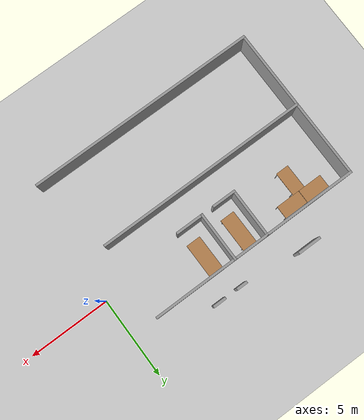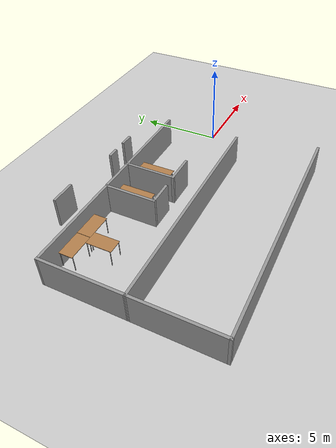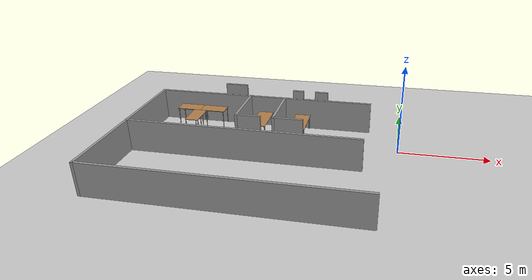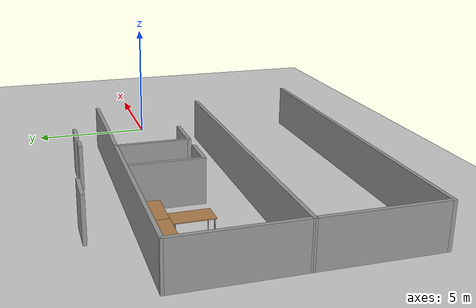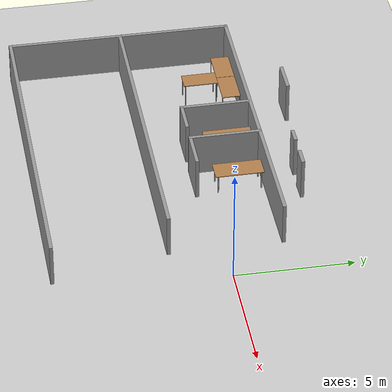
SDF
<sdf version="1.7">
 <world name="default">
  <model name="table">
   <static>1</static>
   <link name="link">
    <collision name="surface">
     <pose>0 0 1 0 -0 0</pose>
     <geometry><box><size>1.5 0.8 0.03</size></box></geometry>
     <surface><friction><ode><mu>0.6</mu><mu2>0.6</mu2></ode></friction></surface>
    </collision>
    <visual name="visual1">
     <pose>0 0 1 0 -0 0</pose>
     <geometry><box><size>1.5 0.8 0.03</size></box></geometry>
     <material>
      <script><uri>file://media/materials/scripts/gazebo.material</uri><name>Gazebo/Wood</name></script>
     </material>
    </visual>
    <collision name="front_left_leg">
     <pose>0.68 0.38 0.5 0 -0 0</pose>
     <geometry><cylinder><radius>0.02</radius><length>1</length></cylinder></geometry>
    </collision>
    <visual name="front_left_leg">
     <pose>0.68 0.38 0.5 0 -0 0</pose>
     <geometry><cylinder><radius>0.02</radius><length>1</length></cylinder></geometry>
     <material>
      <script><uri>file://media/materials/scripts/gazebo.material</uri><name>Gazebo/Grey</name></script>
     </material>
    </visual>
    <collision name="front_right_leg">
     <pose>0.68 -0.38 0.5 0 -0 0</pose>
     <geometry><cylinder><radius>0.02</radius><length>1</length></cylinder></geometry>
    </collision>
    <visual name="front_right_leg">
     <pose>0.68 -0.38 0.5 0 -0 0</pose>
     <geometry><cylinder><radius>0.02</radius><length>1</length></cylinder></geometry>
     <material>
      <script><uri>file://media/materials/scripts/gazebo.material</uri><name>Gazebo/Grey</name></script>
     </material>
    </visual>
    <collision name="back_right_leg">
     <pose>-0.68 -0.38 0.5 0 -0 0</pose>
     <geometry><cylinder><radius>0.02</radius><length>1</length></cylinder></geometry>
    </collision>
    <visual name="back_right_leg">
     <pose>-0.68 -0.38 0.5 0 -0 0</pose>
     <geometry><cylinder><radius>0.02</radius><length>1</length></cylinder></geometry>
     <material>
      <script><uri>file://media/materials/scripts/gazebo.material</uri><name>Gazebo/Grey</name></script>
     </material>
    </visual>
    <collision name="back_left_leg">
     <pose>-0.68 0.38 0.5 0 -0 0</pose>
     <geometry><cylinder><radius>0.02</radius><length>1</length></cylinder></geometry>
    </collision>
    <visual name="back_left_leg">
     <pose>-0.68 0.38 0.5 0 -0 0</pose>
     <geometry><cylinder><radius>0.02</radius><length>1</length></cylinder></geometry>
     <material>
      <script><uri>file://media/materials/scripts/gazebo.material</uri><name>Gazebo/Grey</name></script>
     </material>
    </visual>
   </link>
   <pose>-12.9377 1.89351 0 0 -0 0</pose>
  </model>
  <model name="table_0">
   <static>1</static>
   <link name="link">
    <collision name="surface">
     <pose>0 0 1 0 -0 0</pose>
     <geometry><box><size>1.5 0.8 0.03</size></box></geometry>
     <surface><friction><ode><mu>0.6</mu><mu2>0.6</mu2></ode></friction></surface>
    </collision>
    <visual name="visual1">
     <pose>0 0 1 0 -0 0</pose>
     <geometry><box><size>1.5 0.8 0.03</size></box></geometry>
     <material>
      <script><uri>file://media/materials/scripts/gazebo.material</uri><name>Gazebo/Wood</name></script>
     </material>
    </visual>
    <collision name="front_left_leg">
     <pose>0.68 0.38 0.5 0 -0 0</pose>
     <geometry><cylinder><radius>0.02</radius><length>1</length></cylinder></geometry>
    </collision>
    <visual name="front_left_leg">
     <pose>0.68 0.38 0.5 0 -0 0</pose>
     <geometry><cylinder><radius>0.02</radius><length>1</length></cylinder></geometry>
     <material>
      <script><uri>file://media/materials/scripts/gazebo.material</uri><name>Gazebo/Grey</name></script>
     </material>
    </visual>
    <collision name="front_right_leg">
     <pose>0.68 -0.38 0.5 0 -0 0</pose>
     <geometry><cylinder><radius>0.02</radius><length>1</length></cylinder></geometry>
    </collision>
    <visual name="front_right_leg">
     <pose>0.68 -0.38 0.5 0 -0 0</pose>
     <geometry><cylinder><radius>0.02</radius><length>1</length></cylinder></geometry>
     <material>
      <script><uri>file://media/materials/scripts/gazebo.material</uri><name>Gazebo/Grey</name></script>
     </material>
    </visual>
    <collision name="back_right_leg">
     <pose>-0.68 -0.38 0.5 0 -0 0</pose>
     <geometry><cylinder><radius>0.02</radius><length>1</length></cylinder></geometry>
    </collision>
    <visual name="back_right_leg">
     <pose>-0.68 -0.38 0.5 0 -0 0</pose>
     <geometry><cylinder><radius>0.02</radius><length>1</length></cylinder></geometry>
     <material>
      <script><uri>file://media/materials/scripts/gazebo.material</uri><name>Gazebo/Grey</name></script>
     </material>
    </visual>
    <collision name="back_left_leg">
     <pose>-0.68 0.38 0.5 0 -0 0</pose>
     <geometry><cylinder><radius>0.02</radius><length>1</length></cylinder></geometry>
    </collision>
    <visual name="back_left_leg">
     <pose>-0.68 0.38 0.5 0 -0 0</pose>
     <geometry><cylinder><radius>0.02</radius><length>1</length></cylinder></geometry>
     <material>
      <script><uri>file://media/materials/scripts/gazebo.material</uri><name>Gazebo/Grey</name></script>
     </material>
    </visual>
   </link>
   <pose>-11.4297 1.89153 0 0 -0 0</pose>
  </model>
  <model name="table_1">
   <static>1</static>
   <link name="link">
    <collision name="surface">
     <pose>0 0 1 0 -0 0</pose>
     <geometry><box><size>1.5 0.8 0.03</size></box></geometry>
     <surface><friction><ode><mu>0.6</mu><mu2>0.6</mu2></ode></friction></surface>
    </collision>
    <visual name="visual1">
     <pose>0 0 1 0 -0 0</pose>
     <geometry><box><size>1.5 0.8 0.03</size></box></geometry>
     <material>
      <script><uri>file://media/materials/scripts/gazebo.material</uri><name>Gazebo/Wood</name></script>
     </material>
    </visual>
    <collision name="front_left_leg">
     <pose>0.68 0.38 0.5 0 -0 0</pose>
     <geometry><cylinder><radius>0.02</radius><length>1</length></cylinder></geometry>
    </collision>
    <visual name="front_left_leg">
     <pose>0.68 0.38 0.5 0 -0 0</pose>
     <geometry><cylinder><radius>0.02</radius><length>1</length></cylinder></geometry>
     <material>
      <script><uri>file://media/materials/scripts/gazebo.material</uri><name>Gazebo/Grey</name></script>
     </material>
    </visual>
    <collision name="front_right_leg">
     <pose>0.68 -0.38 0.5 0 -0 0</pose>
     <geometry><cylinder><radius>0.02</radius><length>1</length></cylinder></geometry>
    </collision>
    <visual name="front_right_leg">
     <pose>0.68 -0.38 0.5 0 -0 0</pose>
     <geometry><cylinder><radius>0.02</radius><length>1</length></cylinder></geometry>
     <material>
      <script><uri>file://media/materials/scripts/gazebo.material</uri><name>Gazebo/Grey</name></script>
     </material>
    </visual>
    <collision name="back_right_leg">
     <pose>-0.68 -0.38 0.5 0 -0 0</pose>
     <geometry><cylinder><radius>0.02</radius><length>1</length></cylinder></geometry>
    </collision>
    <visual name="back_right_leg">
     <pose>-0.68 -0.38 0.5 0 -0 0</pose>
     <geometry><cylinder><radius>0.02</radius><length>1</length></cylinder></geometry>
     <material>
      <script><uri>file://media/materials/scripts/gazebo.material</uri><name>Gazebo/Grey</name></script>
     </material>
    </visual>
    <collision name="back_left_leg">
     <pose>-0.68 0.38 0.5 0 -0 0</pose>
     <geometry><cylinder><radius>0.02</radius><length>1</length></cylinder></geometry>
    </collision>
    <visual name="back_left_leg">
     <pose>-0.68 0.38 0.5 0 -0 0</pose>
     <geometry><cylinder><radius>0.02</radius><length>1</length></cylinder></geometry>
     <material>
      <script><uri>file://media/materials/scripts/gazebo.material</uri><name>Gazebo/Grey</name></script>
     </material>
    </visual>
   </link>
   <pose>-12.1826 0.74531 0 0 0 -1.56271</pose>
  </model>
  <model name="meeting_room_table_0_clone">
   <link name="link">
    <inertial>
     <inertia><ixx>0</ixx><ixy>0</ixy><ixz>0</ixz><iyy>0</iyy><iyz>0</iyz><izz>0</izz></inertia>
     <mass>0</mass>
    </inertial>
    <visual name="visual1">
     <pose>0 0 0.84 0 -0 0</pose>
     <geometry><box><size>2.07185 0.892487 0.025485</size></box></geometry>
     <material>
      <script><uri>file://media/materials/scripts/gazebo.material</uri><name>Gazebo/Wood</name></script>
      <shader type="pixel"><normal_map>__default__</normal_map></shader>
      <ambient>1 1 1 1</ambient>
      <diffuse>1 1 1 1</diffuse>
      <specular>0.2 0.2 0.2 1</specular>
      <emissive>0 0 0 1</emissive>
     </material>
    </visual>
    <visual name="front_right_leg">
     <pose>0.92 -0.38 0.42 0 -0 0</pose>
     <geometry><cylinder><radius>0.0301928</radius><length>0.822541</length></cylinder></geometry>
     <material>
      <script><uri>file://media/materials/scripts/gazebo.material</uri><name>Gazebo/Grey</name></script>
      <shader type="pixel"><normal_map>__default__</normal_map></shader>
      <ambient>0.3 0.3 0.3 1</ambient>
      <diffuse>0.7 0.7 0.7 1</diffuse>
      <specular>0.01 0.01 0.01 1</specular>
      <emissive>0 0 0 1</emissive>
     </material>
    </visual>
    <visual name="front_left_leg">
     <pose>0.92 0.38 0.42 0 -0 0</pose>
     <geometry><cylinder><radius>0.0301928</radius><length>0.822541</length></cylinder></geometry>
     <material>
      <script><uri>file://media/materials/scripts/gazebo.material</uri><name>Gazebo/Grey</name></script>
      <shader type="pixel"><normal_map>__default__</normal_map></shader>
      <ambient>0.3 0.3 0.3 1</ambient>
      <diffuse>0.7 0.7 0.7 1</diffuse>
      <specular>0.01 0.01 0.01 1</specular>
      <emissive>0 0 0 1</emissive>
     </material>
    </visual>
    <visual name="back_left_leg">
     <pose>-0.92 0.38 0.42 0 -0 0</pose>
     <geometry><cylinder><radius>0.0301928</radius><length>0.822541</length></cylinder></geometry>
     <material>
      <script><uri>file://media/materials/scripts/gazebo.material</uri><name>Gazebo/Grey</name></script>
      <shader type="pixel"><normal_map>__default__</normal_map></shader>
      <ambient>0.3 0.3 0.3 1</ambient>
      <diffuse>0.7 0.7 0.7 1</diffuse>
      <specular>0.01 0.01 0.01 1</specular>
      <emissive>0 0 0 1</emissive>
     </material>
    </visual>
    <visual name="back_right_leg">
     <pose>-0.92 -0.38 0.42 0 -0 0</pose>
     <geometry><cylinder><radius>0.0301928</radius><length>0.822541</length></cylinder></geometry>
     <material>
      <script><uri>file://media/materials/scripts/gazebo.material</uri><name>Gazebo/Grey</name></script>
      <shader type="pixel"><normal_map>__default__</normal_map></shader>
      <ambient>0.3 0.3 0.3 1</ambient>
      <diffuse>0.7 0.7 0.7 1</diffuse>
      <specular>0.01 0.01 0.01 1</specular>
      <emissive>0 0 0 1</emissive>
     </material>
    </visual>
    <collision name="surface">
     <pose>0 0 0.84 0 -0 0</pose>
     <geometry><box><size>2.07185 0.892487 0.025485</size></box></geometry>
     <surface>
      <friction>
       <ode><mu>0.6</mu><mu2>0.6</mu2><fdir1>0 0 0</fdir1><slip1>0</slip1><slip2>0</slip2></ode>
       <torsional>
        <coefficient>1</coefficient>
        <patch_radius>0</patch_radius>
        <surface_radius>0</surface_radius>
        <use_patch_radius>1</use_patch_radius>
        <ode><slip>0</slip></ode>
       </torsional>
      </friction>
      <bounce><restitution_coefficient>0</restitution_coefficient><threshold>1e+06</threshold></bounce>
      <contact>
       <collide_without_contact>0</collide_without_contact>
       <collide_without_contact_bitmask>1</collide_without_contact_bitmask>
       <collide_bitmask>1</collide_bitmask>
       <ode>
        <soft_cfm>0</soft_cfm>
        <soft_erp>0.2</soft_erp>
        <kp>1e+13</kp>
        <kd>1</kd>
        <max_vel>0.01</max_vel>
        <min_depth>0</min_depth>
       </ode>
       <bullet>
        <split_impulse>1</split_impulse>
        <split_impulse_penetration_threshold>-0.01</split_impulse_penetration_threshold>
        <soft_cfm>0</soft_cfm>
        <soft_erp>0.2</soft_erp>
        <kp>1e+13</kp>
        <kd>1</kd>
       </bullet>
      </contact>
     </surface>
    </collision>
    <collision name="front_left_leg">
     <pose>0.92 0.38 0.42 0 -0 0</pose>
     <geometry><cylinder><radius>0.030193</radius><length>0.822541</length></cylinder></geometry>
     <surface>
      <friction>
       <ode><mu>1</mu><mu2>1</mu2><fdir1>0 0 0</fdir1><slip1>0</slip1><slip2>0</slip2></ode>
       <torsional>
        <coefficient>1</coefficient>
        <patch_radius>0</patch_radius>
        <surface_radius>0</surface_radius>
        <use_patch_radius>1</use_patch_radius>
        <ode><slip>0</slip></ode>
       </torsional>
      </friction>
      <bounce><restitution_coefficient>0</restitution_coefficient><threshold>1e+06</threshold></bounce>
      <contact>
       <collide_without_contact>0</collide_without_contact>
       <collide_without_contact_bitmask>1</collide_without_contact_bitmask>
       <collide_bitmask>1</collide_bitmask>
       <ode>
        <soft_cfm>0</soft_cfm>
        <soft_erp>0.2</soft_erp>
        <kp>1e+13</kp>
        <kd>1</kd>
        <max_vel>0.01</max_vel>
        <min_depth>0</min_depth>
       </ode>
       <bullet>
        <split_impulse>1</split_impulse>
        <split_impulse_penetration_threshold>-0.01</split_impulse_penetration_threshold>
        <soft_cfm>0</soft_cfm>
        <soft_erp>0.2</soft_erp>
        <kp>1e+13</kp>
        <kd>1</kd>
       </bullet>
      </contact>
     </surface>
    </collision>
    <collision name="front_right_leg">
     <pose>0.92 -0.38 0.42 0 -0 0</pose>
     <geometry><cylinder><radius>0.030193</radius><length>0.822541</length></cylinder></geometry>
     <surface>
      <friction>
       <ode><mu>1</mu><mu2>1</mu2><fdir1>0 0 0</fdir1><slip1>0</slip1><slip2>0</slip2></ode>
       <torsional>
        <coefficient>1</coefficient>
        <patch_radius>0</patch_radius>
        <surface_radius>0</surface_radius>
        <use_patch_radius>1</use_patch_radius>
        <ode><slip>0</slip></ode>
       </torsional>
      </friction>
      <bounce><restitution_coefficient>0</restitution_coefficient><threshold>1e+06</threshold></bounce>
      <contact>
       <collide_without_contact>0</collide_without_contact>
       <collide_without_contact_bitmask>1</collide_without_contact_bitmask>
       <collide_bitmask>1</collide_bitmask>
       <ode>
        <soft_cfm>0</soft_cfm>
        <soft_erp>0.2</soft_erp>
        <kp>1e+13</kp>
        <kd>1</kd>
        <max_vel>0.01</max_vel>
        <min_depth>0</min_depth>
       </ode>
       <bullet>
        <split_impulse>1</split_impulse>
        <split_impulse_penetration_threshold>-0.01</split_impulse_penetration_threshold>
        <soft_cfm>0</soft_cfm>
        <soft_erp>0.2</soft_erp>
        <kp>1e+13</kp>
        <kd>1</kd>
       </bullet>
      </contact>
     </surface>
    </collision>
    <collision name="back_right_leg">
     <pose>-0.92 -0.38 0.42 0 -0 0</pose>
     <geometry><cylinder><radius>0.030193</radius><length>0.822541</length></cylinder></geometry>
     <surface>
      <friction>
       <ode><mu>1</mu><mu2>1</mu2><fdir1>0 0 0</fdir1><slip1>0</slip1><slip2>0</slip2></ode>
       <torsional>
        <coefficient>1</coefficient>
        <patch_radius>0</patch_radius>
        <surface_radius>0</surface_radius>
        <use_patch_radius>1</use_patch_radius>
        <ode><slip>0</slip></ode>
       </torsional>
      </friction>
      <bounce><restitution_coefficient>0</restitution_coefficient><threshold>1e+06</threshold></bounce>
      <contact>
       <collide_without_contact>0</collide_without_contact>
       <collide_without_contact_bitmask>1</collide_without_contact_bitmask>
       <collide_bitmask>1</collide_bitmask>
       <ode>
        <soft_cfm>0</soft_cfm>
        <soft_erp>0.2</soft_erp>
        <kp>1e+13</kp>
        <kd>1</kd>
        <max_vel>0.01</max_vel>
        <min_depth>0</min_depth>
       </ode>
       <bullet>
        <split_impulse>1</split_impulse>
        <split_impulse_penetration_threshold>-0.01</split_impulse_penetration_threshold>
        <soft_cfm>0</soft_cfm>
        <soft_erp>0.2</soft_erp>
        <kp>1e+13</kp>
        <kd>1</kd>
       </bullet>
      </contact>
     </surface>
    </collision>
    <collision name="back_left_leg">
     <pose>-0.92 0.38 0.42 0 -0 0</pose>
     <geometry><cylinder><radius>0.030193</radius><length>0.822541</length></cylinder></geometry>
     <surface>
      <friction>
       <ode><mu>1</mu><mu2>1</mu2><fdir1>0 0 0</fdir1><slip1>0</slip1><slip2>0</slip2></ode>
       <torsional>
        <coefficient>1</coefficient>
        <patch_radius>0</patch_radius>
        <surface_radius>0</surface_radius>
        <use_patch_radius>1</use_patch_radius>
        <ode><slip>0</slip></ode>
       </torsional>
      </friction>
      <bounce><restitution_coefficient>0</restitution_coefficient><threshold>1e+06</threshold></bounce>
      <contact>
       <collide_without_contact>0</collide_without_contact>
       <collide_without_contact_bitmask>1</collide_without_contact_bitmask>
       <collide_bitmask>1</collide_bitmask>
       <ode>
        <soft_cfm>0</soft_cfm>
        <soft_erp>0.2</soft_erp>
        <kp>1e+13</kp>
        <kd>1</kd>
        <max_vel>0.01</max_vel>
        <min_depth>0</min_depth>
       </ode>
       <bullet>
        <split_impulse>1</split_impulse>
        <split_impulse_penetration_threshold>-0.01</split_impulse_penetration_threshold>
        <soft_cfm>0</soft_cfm>
        <soft_erp>0.2</soft_erp>
        <kp>1e+13</kp>
        <kd>1</kd>
       </bullet>
      </contact>
     </surface>
    </collision>
   </link>
   <static>1</static>
   <pose>-5.83648 1.28084 0 0 0 -1.56528</pose>
  </model>
  <model name="meeting_room_table_0_clone_clone">
   <link name="link">
    <inertial>
     <inertia><ixx>0</ixx><ixy>0</ixy><ixz>0</ixz><iyy>0</iyy><iyz>0</iyz><izz>0</izz></inertia>
     <mass>0</mass>
    </inertial>
    <visual name="visual1">
     <pose>0 0 0.84 0 -0 0</pose>
     <geometry><box><size>2.07185 0.892487 0.025485</size></box></geometry>
     <material>
      <script><uri>file://media/materials/scripts/gazebo.material</uri><name>Gazebo/Wood</name></script>
      <shader type="pixel"><normal_map>__default__</normal_map></shader>
      <ambient>1 1 1 1</ambient>
      <diffuse>1 1 1 1</diffuse>
      <specular>0.2 0.2 0.2 1</specular>
      <emissive>0 0 0 1</emissive>
     </material>
    </visual>
    <visual name="front_right_leg">
     <pose>0.92 -0.38 0.42 0 -0 0</pose>
     <geometry><cylinder><radius>0.0301928</radius><length>0.822541</length></cylinder></geometry>
     <material>
      <script><uri>file://media/materials/scripts/gazebo.material</uri><name>Gazebo/Grey</name></script>
      <shader type="pixel"><normal_map>__default__</normal_map></shader>
      <ambient>0.3 0.3 0.3 1</ambient>
      <diffuse>0.7 0.7 0.7 1</diffuse>
      <specular>0.01 0.01 0.01 1</specular>
      <emissive>0 0 0 1</emissive>
     </material>
    </visual>
    <visual name="front_left_leg">
     <pose>0.92 0.38 0.42 0 -0 0</pose>
     <geometry><cylinder><radius>0.0301928</radius><length>0.822541</length></cylinder></geometry>
     <material>
      <script><uri>file://media/materials/scripts/gazebo.material</uri><name>Gazebo/Grey</name></script>
      <shader type="pixel"><normal_map>__default__</normal_map></shader>
      <ambient>0.3 0.3 0.3 1</ambient>
      <diffuse>0.7 0.7 0.7 1</diffuse>
      <specular>0.01 0.01 0.01 1</specular>
      <emissive>0 0 0 1</emissive>
     </material>
    </visual>
    <visual name="back_left_leg">
     <pose>-0.92 0.38 0.42 0 -0 0</pose>
     <geometry><cylinder><radius>0.0301928</radius><length>0.822541</length></cylinder></geometry>
     <material>
      <script><uri>file://media/materials/scripts/gazebo.material</uri><name>Gazebo/Grey</name></script>
      <shader type="pixel"><normal_map>__default__</normal_map></shader>
      <ambient>0.3 0.3 0.3 1</ambient>
      <diffuse>0.7 0.7 0.7 1</diffuse>
      <specular>0.01 0.01 0.01 1</specular>
      <emissive>0 0 0 1</emissive>
     </material>
    </visual>
    <visual name="back_right_leg">
     <pose>-0.92 -0.38 0.42 0 -0 0</pose>
     <geometry><cylinder><radius>0.0301928</radius><length>0.822541</length></cylinder></geometry>
     <material>
      <script><uri>file://media/materials/scripts/gazebo.material</uri><name>Gazebo/Grey</name></script>
      <shader type="pixel"><normal_map>__default__</normal_map></shader>
      <ambient>0.3 0.3 0.3 1</ambient>
      <diffuse>0.7 0.7 0.7 1</diffuse>
      <specular>0.01 0.01 0.01 1</specular>
      <emissive>0 0 0 1</emissive>
     </material>
    </visual>
    <collision name="surface">
     <pose>0 0 0.84 0 -0 0</pose>
     <geometry><box><size>2.07185 0.892487 0.025485</size></box></geometry>
     <surface>
      <friction>
       <ode><mu>0.6</mu><mu2>0.6</mu2><fdir1>0 0 0</fdir1><slip1>0</slip1><slip2>0</slip2></ode>
       <torsional>
        <coefficient>1</coefficient>
        <patch_radius>0</patch_radius>
        <surface_radius>0</surface_radius>
        <use_patch_radius>1</use_patch_radius>
        <ode><slip>0</slip></ode>
       </torsional>
      </friction>
      <bounce><restitution_coefficient>0</restitution_coefficient><threshold>1e+06</threshold></bounce>
      <contact>
       <collide_without_contact>0</collide_without_contact>
       <collide_without_contact_bitmask>1</collide_without_contact_bitmask>
       <collide_bitmask>1</collide_bitmask>
       <ode>
        <soft_cfm>0</soft_cfm>
        <soft_erp>0.2</soft_erp>
        <kp>1e+13</kp>
        <kd>1</kd>
        <max_vel>0.01</max_vel>
        <min_depth>0</min_depth>
       </ode>
       <bullet>
        <split_impulse>1</split_impulse>
        <split_impulse_penetration_threshold>-0.01</split_impulse_penetration_threshold>
        <soft_cfm>0</soft_cfm>
        <soft_erp>0.2</soft_erp>
        <kp>1e+13</kp>
        <kd>1</kd>
       </bullet>
      </contact>
     </surface>
    </collision>
    <collision name="front_left_leg">
     <pose>0.92 0.38 0.42 0 -0 0</pose>
     <geometry><cylinder><radius>0.030193</radius><length>0.822541</length></cylinder></geometry>
     <surface>
      <friction>
       <ode><mu>1</mu><mu2>1</mu2><fdir1>0 0 0</fdir1><slip1>0</slip1><slip2>0</slip2></ode>
       <torsional>
        <coefficient>1</coefficient>
        <patch_radius>0</patch_radius>
        <surface_radius>0</surface_radius>
        <use_patch_radius>1</use_patch_radius>
        <ode><slip>0</slip></ode>
       </torsional>
      </friction>
      <bounce><restitution_coefficient>0</restitution_coefficient><threshold>1e+06</threshold></bounce>
      <contact>
       <collide_without_contact>0</collide_without_contact>
       <collide_without_contact_bitmask>1</collide_without_contact_bitmask>
       <collide_bitmask>1</collide_bitmask>
       <ode>
        <soft_cfm>0</soft_cfm>
        <soft_erp>0.2</soft_erp>
        <kp>1e+13</kp>
        <kd>1</kd>
        <max_vel>0.01</max_vel>
        <min_depth>0</min_depth>
       </ode>
       <bullet>
        <split_impulse>1</split_impulse>
        <split_impulse_penetration_threshold>-0.01</split_impulse_penetration_threshold>
        <soft_cfm>0</soft_cfm>
        <soft_erp>0.2</soft_erp>
        <kp>1e+13</kp>
        <kd>1</kd>
       </bullet>
      </contact>
     </surface>
    </collision>
    <collision name="front_right_leg">
     <pose>0.92 -0.38 0.42 0 -0 0</pose>
     <geometry><cylinder><radius>0.030193</radius><length>0.822541</length></cylinder></geometry>
     <surface>
      <friction>
       <ode><mu>1</mu><mu2>1</mu2><fdir1>0 0 0</fdir1><slip1>0</slip1><slip2>0</slip2></ode>
       <torsional>
        <coefficient>1</coefficient>
        <patch_radius>0</patch_radius>
        <surface_radius>0</surface_radius>
        <use_patch_radius>1</use_patch_radius>
        <ode><slip>0</slip></ode>
       </torsional>
      </friction>
      <bounce><restitution_coefficient>0</restitution_coefficient><threshold>1e+06</threshold></bounce>
      <contact>
       <collide_without_contact>0</collide_without_contact>
       <collide_without_contact_bitmask>1</collide_without_contact_bitmask>
       <collide_bitmask>1</collide_bitmask>
       <ode>
        <soft_cfm>0</soft_cfm>
        <soft_erp>0.2</soft_erp>
        <kp>1e+13</kp>
        <kd>1</kd>
        <max_vel>0.01</max_vel>
        <min_depth>0</min_depth>
       </ode>
       <bullet>
        <split_impulse>1</split_impulse>
        <split_impulse_penetration_threshold>-0.01</split_impulse_penetration_threshold>
        <soft_cfm>0</soft_cfm>
        <soft_erp>0.2</soft_erp>
        <kp>1e+13</kp>
        <kd>1</kd>
       </bullet>
      </contact>
     </surface>
    </collision>
    <collision name="back_right_leg">
     <pose>-0.92 -0.38 0.42 0 -0 0</pose>
     <geometry><cylinder><radius>0.030193</radius><length>0.822541</length></cylinder></geometry>
     <surface>
      <friction>
       <ode><mu>1</mu><mu2>1</mu2><fdir1>0 0 0</fdir1><slip1>0</slip1><slip2>0</slip2></ode>
       <torsional>
        <coefficient>1</coefficient>
        <patch_radius>0</patch_radius>
        <surface_radius>0</surface_radius>
        <use_patch_radius>1</use_patch_radius>
        <ode><slip>0</slip></ode>
       </torsional>
      </friction>
      <bounce><restitution_coefficient>0</restitution_coefficient><threshold>1e+06</threshold></bounce>
      <contact>
       <collide_without_contact>0</collide_without_contact>
       <collide_without_contact_bitmask>1</collide_without_contact_bitmask>
       <collide_bitmask>1</collide_bitmask>
       <ode>
        <soft_cfm>0</soft_cfm>
        <soft_erp>0.2</soft_erp>
        <kp>1e+13</kp>
        <kd>1</kd>
        <max_vel>0.01</max_vel>
        <min_depth>0</min_depth>
       </ode>
       <bullet>
        <split_impulse>1</split_impulse>
        <split_impulse_penetration_threshold>-0.01</split_impulse_penetration_threshold>
        <soft_cfm>0</soft_cfm>
        <soft_erp>0.2</soft_erp>
        <kp>1e+13</kp>
        <kd>1</kd>
       </bullet>
      </contact>
     </surface>
    </collision>
    <collision name="back_left_leg">
     <pose>-0.92 0.38 0.42 0 -0 0</pose>
     <geometry><cylinder><radius>0.030193</radius><length>0.822541</length></cylinder></geometry>
     <surface>
      <friction>
       <ode><mu>1</mu><mu2>1</mu2><fdir1>0 0 0</fdir1><slip1>0</slip1><slip2>0</slip2></ode>
       <torsional>
        <coefficient>1</coefficient>
        <patch_radius>0</patch_radius>
        <surface_radius>0</surface_radius>
        <use_patch_radius>1</use_patch_radius>
        <ode><slip>0</slip></ode>
       </torsional>
      </friction>
      <bounce><restitution_coefficient>0</restitution_coefficient><threshold>1e+06</threshold></bounce>
      <contact>
       <collide_without_contact>0</collide_without_contact>
       <collide_without_contact_bitmask>1</collide_without_contact_bitmask>
       <collide_bitmask>1</collide_bitmask>
       <ode>
        <soft_cfm>0</soft_cfm>
        <soft_erp>0.2</soft_erp>
        <kp>1e+13</kp>
        <kd>1</kd>
        <max_vel>0.01</max_vel>
        <min_depth>0</min_depth>
       </ode>
       <bullet>
        <split_impulse>1</split_impulse>
        <split_impulse_penetration_threshold>-0.01</split_impulse_penetration_threshold>
        <soft_cfm>0</soft_cfm>
        <soft_erp>0.2</soft_erp>
        <kp>1e+13</kp>
        <kd>1</kd>
       </bullet>
      </contact>
     </surface>
    </collision>
   </link>
   <static>1</static>
   <pose>-8.17831 1.27697 0 0 0 -1.56528</pose>
  </model>
  <model name="ground_plane">
   <static>1</static>
   <link name="link">
    <collision name="collision">
     <geometry><plane><normal>0 0 1</normal><size>100 100</size></plane></geometry>
     <surface>
      <contact><collide_bitmask>65535</collide_bitmask></contact>
      <friction><ode><mu>100</mu><mu2>50</mu2></ode></friction>
     </surface>
    </collision>
    <visual name="visual">
     <cast_shadows>0</cast_shadows>
     <geometry><plane><normal>0 0 1</normal><size>100 100</size></plane></geometry>
     <material>
      <script><uri>file://media/materials/scripts/gazebo.material</uri><name>Gazebo/Grey</name></script>
     </material>
    </visual>
   </link>
  </model>
  <model name="HQ_0">
   <link name="Wall_113">
    <pose>-10.7101 4.19347 0 0 -0 3.14159</pose>
    <visual name="Wall_113_Visual">
     <pose>0 0 1.25 0 -0 0</pose>
     <geometry><box><size>1.43805 0.15 2</size></box></geometry>
     <material>
      <script><uri>file://media/materials/scripts/gazebo.material</uri><name>Gazebo/Grey</name></script>
      <ambient>1 1 1 1</ambient>
      <shader type="pixel"/>
     </material>
     <meta><layer>0</layer></meta>
    </visual>
    <collision name="Wall_113_Collision">
     <pose>0 0 1.25 0 -0 0</pose>
     <geometry><box><size>1.43805 0.15 2</size></box></geometry>
     <surface>
      <friction>
       <ode><mu>1</mu><mu2>1</mu2><fdir1>0 0 0</fdir1><slip1>0</slip1><slip2>0</slip2></ode>
       <torsional>
        <coefficient>1</coefficient>
        <patch_radius>0</patch_radius>
        <surface_radius>0</surface_radius>
        <use_patch_radius>1</use_patch_radius>
        <ode><slip>0</slip></ode>
       </torsional>
      </friction>
      <bounce><restitution_coefficient>0</restitution_coefficient><threshold>1e+06</threshold></bounce>
      <contact>
       <collide_without_contact>0</collide_without_contact>
       <collide_without_contact_bitmask>1</collide_without_contact_bitmask>
       <collide_bitmask>1</collide_bitmask>
       <ode>
        <soft_cfm>0</soft_cfm>
        <soft_erp>0.2</soft_erp>
        <kp>1e+13</kp>
        <kd>1</kd>
        <max_vel>0.01</max_vel>
        <min_depth>0</min_depth>
       </ode>
       <bullet>
        <split_impulse>1</split_impulse>
        <split_impulse_penetration_threshold>-0.01</split_impulse_penetration_threshold>
        <soft_cfm>0</soft_cfm>
        <soft_erp>0.2</soft_erp>
        <kp>1e+13</kp>
        <kd>1</kd>
       </bullet>
      </contact>
     </surface>
    </collision>
   </link>
   <link name="Wall_31">
    <pose>-7.9114 -7.22017 0 0 -0 3.14159</pose>
    <visual name="Wall_31_Visual">
     <pose>0 0 1.25 0 -0 0</pose>
     <geometry><box><size>14.25 0.15 2</size></box></geometry>
     <material>
      <script><uri>file://media/materials/scripts/gazebo.material</uri><name>Gazebo/Grey</name></script>
      <ambient>1 1 1 1</ambient>
      <shader type="pixel"/>
     </material>
     <meta><layer>0</layer></meta>
    </visual>
    <collision name="Wall_31_Collision">
     <pose>0 0 1.25 0 -0 0</pose>
     <geometry><box><size>14.25 0.15 2</size></box></geometry>
     <surface>
      <friction>
       <ode><mu>1</mu><mu2>1</mu2><fdir1>0 0 0</fdir1><slip1>0</slip1><slip2>0</slip2></ode>
       <torsional>
        <coefficient>1</coefficient>
        <patch_radius>0</patch_radius>
        <surface_radius>0</surface_radius>
        <use_patch_radius>1</use_patch_radius>
        <ode><slip>0</slip></ode>
       </torsional>
      </friction>
      <bounce><restitution_coefficient>0</restitution_coefficient><threshold>1e+06</threshold></bounce>
      <contact>
       <collide_without_contact>0</collide_without_contact>
       <collide_without_contact_bitmask>1</collide_without_contact_bitmask>
       <collide_bitmask>1</collide_bitmask>
       <ode>
        <soft_cfm>0</soft_cfm>
        <soft_erp>0.2</soft_erp>
        <kp>1e+13</kp>
        <kd>1</kd>
        <max_vel>0.01</max_vel>
        <min_depth>0</min_depth>
       </ode>
       <bullet>
        <split_impulse>1</split_impulse>
        <split_impulse_penetration_threshold>-0.01</split_impulse_penetration_threshold>
        <soft_cfm>0</soft_cfm>
        <soft_erp>0.2</soft_erp>
        <kp>1e+13</kp>
        <kd>1</kd>
       </bullet>
      </contact>
     </surface>
    </collision>
   </link>
   <link name="Wall_33">
    <pose>-14.9607 -4.79146 0 0 -0 1.57052</pose>
    <visual name="Wall_33_Visual">
     <pose>0 0 1.25 0 -0 0</pose>
     <geometry><box><size>5.00744 0.15 2</size></box></geometry>
     <material>
      <script><uri>file://media/materials/scripts/gazebo.material</uri><name>Gazebo/Grey</name></script>
      <ambient>1 1 1 1</ambient>
      <shader type="pixel"/>
     </material>
     <meta><layer>0</layer></meta>
    </visual>
    <collision name="Wall_33_Collision">
     <pose>0 0 1.25 0 -0 0</pose>
     <geometry><box><size>5.00744 0.15 2</size></box></geometry>
     <surface>
      <friction>
       <ode><mu>1</mu><mu2>1</mu2><fdir1>0 0 0</fdir1><slip1>0</slip1><slip2>0</slip2></ode>
       <torsional>
        <coefficient>1</coefficient>
        <patch_radius>0</patch_radius>
        <surface_radius>0</surface_radius>
        <use_patch_radius>1</use_patch_radius>
        <ode><slip>0</slip></ode>
       </torsional>
      </friction>
      <bounce><restitution_coefficient>0</restitution_coefficient><threshold>1e+06</threshold></bounce>
      <contact>
       <collide_without_contact>0</collide_without_contact>
       <collide_without_contact_bitmask>1</collide_without_contact_bitmask>
       <collide_bitmask>1</collide_bitmask>
       <ode>
        <soft_cfm>0</soft_cfm>
        <soft_erp>0.2</soft_erp>
        <kp>1e+13</kp>
        <kd>1</kd>
        <max_vel>0.01</max_vel>
        <min_depth>0</min_depth>
       </ode>
       <bullet>
        <split_impulse>1</split_impulse>
        <split_impulse_penetration_threshold>-0.01</split_impulse_penetration_threshold>
        <soft_cfm>0</soft_cfm>
        <soft_erp>0.2</soft_erp>
        <kp>1e+13</kp>
        <kd>1</kd>
       </bullet>
      </contact>
     </surface>
    </collision>
   </link>
   <link name="Wall_34">
    <pose>-8.43629 -2.35401 0 0 -0 0.00134</pose>
    <visual name="Wall_34_Visual">
     <pose>0 0 1.25 0 -0 0</pose>
     <geometry><box><size>13.1976 0.15 2</size></box></geometry>
     <material>
      <script><uri>file://media/materials/scripts/gazebo.material</uri><name>Gazebo/Grey</name></script>
      <ambient>1 1 1 1</ambient>
      <shader type="pixel"/>
     </material>
     <meta><layer>0</layer></meta>
    </visual>
    <collision name="Wall_34_Collision">
     <pose>0 0 1.25 0 -0 0</pose>
     <geometry><box><size>13.1976 0.15 2</size></box></geometry>
     <surface>
      <friction>
       <ode><mu>1</mu><mu2>1</mu2><fdir1>0 0 0</fdir1><slip1>0</slip1><slip2>0</slip2></ode>
       <torsional>
        <coefficient>1</coefficient>
        <patch_radius>0</patch_radius>
        <surface_radius>0</surface_radius>
        <use_patch_radius>1</use_patch_radius>
        <ode><slip>0</slip></ode>
       </torsional>
      </friction>
      <bounce><restitution_coefficient>0</restitution_coefficient><threshold>1e+06</threshold></bounce>
      <contact>
       <collide_without_contact>0</collide_without_contact>
       <collide_without_contact_bitmask>1</collide_without_contact_bitmask>
       <collide_bitmask>1</collide_bitmask>
       <ode>
        <soft_cfm>0</soft_cfm>
        <soft_erp>0.2</soft_erp>
        <kp>1e+13</kp>
        <kd>1</kd>
        <max_vel>0.01</max_vel>
        <min_depth>0</min_depth>
       </ode>
       <bullet>
        <split_impulse>1</split_impulse>
        <split_impulse_penetration_threshold>-0.01</split_impulse_penetration_threshold>
        <soft_cfm>0</soft_cfm>
        <soft_erp>0.2</soft_erp>
        <kp>1e+13</kp>
        <kd>1</kd>
       </bullet>
      </contact>
     </surface>
    </collision>
   </link>
   <link name="Wall_36">
    <pose>-14.9601 0.007151 0 0 -0 1.5708</pose>
    <visual name="Wall_36_Visual">
     <pose>0 0 1.25 0 -0 0</pose>
     <geometry><box><size>4.88994 0.15 2</size></box></geometry>
     <material>
      <script><uri>file://media/materials/scripts/gazebo.material</uri><name>Gazebo/Grey</name></script>
      <ambient>1 1 1 1</ambient>
      <shader type="pixel"/>
     </material>
     <meta><layer>0</layer></meta>
    </visual>
    <collision name="Wall_36_Collision">
     <pose>0 0 1.25 0 -0 0</pose>
     <geometry><box><size>4.88994 0.15 2</size></box></geometry>
     <surface>
      <friction>
       <ode><mu>1</mu><mu2>1</mu2><fdir1>0 0 0</fdir1><slip1>0</slip1><slip2>0</slip2></ode>
       <torsional>
        <coefficient>1</coefficient>
        <patch_radius>0</patch_radius>
        <surface_radius>0</surface_radius>
        <use_patch_radius>1</use_patch_radius>
        <ode><slip>0</slip></ode>
       </torsional>
      </friction>
      <bounce><restitution_coefficient>0</restitution_coefficient><threshold>1e+06</threshold></bounce>
      <contact>
       <collide_without_contact>0</collide_without_contact>
       <collide_without_contact_bitmask>1</collide_without_contact_bitmask>
       <collide_bitmask>1</collide_bitmask>
       <ode>
        <soft_cfm>0</soft_cfm>
        <soft_erp>0.2</soft_erp>
        <kp>1e+13</kp>
        <kd>1</kd>
        <max_vel>0.01</max_vel>
        <min_depth>0</min_depth>
       </ode>
       <bullet>
        <split_impulse>1</split_impulse>
        <split_impulse_penetration_threshold>-0.01</split_impulse_penetration_threshold>
        <soft_cfm>0</soft_cfm>
        <soft_erp>0.2</soft_erp>
        <kp>1e+13</kp>
        <kd>1</kd>
       </bullet>
      </contact>
     </surface>
    </collision>
   </link>
   <link name="Wall_40">
    <pose>-8.43119 2.39 0 0 -0 0.001983</pose>
    <visual name="Wall_40_Visual">
     <pose>0 0 1.25 0 -0 0</pose>
     <geometry><box><size>13.208 0.15 2</size></box></geometry>
     <material>
      <script><uri>file://media/materials/scripts/gazebo.material</uri><name>Gazebo/Grey</name></script>
      <ambient>1 1 1 1</ambient>
      <shader type="pixel"/>
     </material>
     <meta><layer>0</layer></meta>
    </visual>
    <collision name="Wall_40_Collision">
     <pose>0 0 1.25 0 -0 0</pose>
     <geometry><box><size>13.208 0.15 2</size></box></geometry>
     <surface>
      <friction>
       <ode><mu>1</mu><mu2>1</mu2><fdir1>0 0 0</fdir1><slip1>0</slip1><slip2>0</slip2></ode>
       <torsional>
        <coefficient>1</coefficient>
        <patch_radius>0</patch_radius>
        <surface_radius>0</surface_radius>
        <use_patch_radius>1</use_patch_radius>
        <ode><slip>0</slip></ode>
       </torsional>
      </friction>
      <bounce><restitution_coefficient>0</restitution_coefficient><threshold>1e+06</threshold></bounce>
      <contact>
       <collide_without_contact>0</collide_without_contact>
       <collide_without_contact_bitmask>1</collide_without_contact_bitmask>
       <collide_bitmask>1</collide_bitmask>
       <ode>
        <soft_cfm>0</soft_cfm>
        <soft_erp>0.2</soft_erp>
        <kp>1e+13</kp>
        <kd>1</kd>
        <max_vel>0.01</max_vel>
        <min_depth>0</min_depth>
       </ode>
       <bullet>
        <split_impulse>1</split_impulse>
        <split_impulse_penetration_threshold>-0.01</split_impulse_penetration_threshold>
        <soft_cfm>0</soft_cfm>
        <soft_erp>0.2</soft_erp>
        <kp>1e+13</kp>
        <kd>1</kd>
       </bullet>
      </contact>
     </surface>
    </collision>
   </link>
   <link name="Wall_68">
    <pose>-7.06449 0.912555 0 0 0 -1.5708</pose>
    <visual name="Wall_68_Visual">
     <pose>0 0 1.25 0 -0 0</pose>
     <geometry><box><size>3.09783 0.15 2</size></box></geometry>
     <material>
      <script><uri>file://media/materials/scripts/gazebo.material</uri><name>Gazebo/Grey</name></script>
      <ambient>1 1 1 1</ambient>
      <shader type="pixel"/>
     </material>
     <meta><layer>0</layer></meta>
    </visual>
    <collision name="Wall_68_Collision">
     <pose>0 0 1.25 0 -0 0</pose>
     <geometry><box><size>3.09783 0.15 2</size></box></geometry>
     <surface>
      <friction>
       <ode><mu>1</mu><mu2>1</mu2><fdir1>0 0 0</fdir1><slip1>0</slip1><slip2>0</slip2></ode>
       <torsional>
        <coefficient>1</coefficient>
        <patch_radius>0</patch_radius>
        <surface_radius>0</surface_radius>
        <use_patch_radius>1</use_patch_radius>
        <ode><slip>0</slip></ode>
       </torsional>
      </friction>
      <bounce><restitution_coefficient>0</restitution_coefficient><threshold>1e+06</threshold></bounce>
      <contact>
       <collide_without_contact>0</collide_without_contact>
       <collide_without_contact_bitmask>1</collide_without_contact_bitmask>
       <collide_bitmask>1</collide_bitmask>
       <ode>
        <soft_cfm>0</soft_cfm>
        <soft_erp>0.2</soft_erp>
        <kp>1e+13</kp>
        <kd>1</kd>
        <max_vel>0.01</max_vel>
        <min_depth>0</min_depth>
       </ode>
       <bullet>
        <split_impulse>1</split_impulse>
        <split_impulse_penetration_threshold>-0.01</split_impulse_penetration_threshold>
        <soft_cfm>0</soft_cfm>
        <soft_erp>0.2</soft_erp>
        <kp>1e+13</kp>
        <kd>1</kd>
       </bullet>
      </contact>
     </surface>
    </collision>
   </link>
   <link name="Wall_69">
    <pose>-6.25145 -0.561358 0 0 -0 0</pose>
    <visual name="Wall_69_Visual">
     <pose>0 0 1.25 0 -0 0</pose>
     <geometry><box><size>1.77611 0.15 2</size></box></geometry>
     <material>
      <script><uri>file://media/materials/scripts/gazebo.material</uri><name>Gazebo/Grey</name></script>
      <ambient>1 1 1 1</ambient>
      <shader type="pixel"/>
     </material>
     <meta><layer>0</layer></meta>
    </visual>
    <collision name="Wall_69_Collision">
     <pose>0 0 1.25 0 -0 0</pose>
     <geometry><box><size>1.77611 0.15 2</size></box></geometry>
     <surface>
      <friction>
       <ode><mu>1</mu><mu2>1</mu2><fdir1>0 0 0</fdir1><slip1>0</slip1><slip2>0</slip2></ode>
       <torsional>
        <coefficient>1</coefficient>
        <patch_radius>0</patch_radius>
        <surface_radius>0</surface_radius>
        <use_patch_radius>1</use_patch_radius>
        <ode><slip>0</slip></ode>
       </torsional>
      </friction>
      <bounce><restitution_coefficient>0</restitution_coefficient><threshold>1e+06</threshold></bounce>
      <contact>
       <collide_without_contact>0</collide_without_contact>
       <collide_without_contact_bitmask>1</collide_without_contact_bitmask>
       <collide_bitmask>1</collide_bitmask>
       <ode>
        <soft_cfm>0</soft_cfm>
        <soft_erp>0.2</soft_erp>
        <kp>1e+13</kp>
        <kd>1</kd>
        <max_vel>0.01</max_vel>
        <min_depth>0</min_depth>
       </ode>
       <bullet>
        <split_impulse>1</split_impulse>
        <split_impulse_penetration_threshold>-0.01</split_impulse_penetration_threshold>
        <soft_cfm>0</soft_cfm>
        <soft_erp>0.2</soft_erp>
        <kp>1e+13</kp>
        <kd>1</kd>
       </bullet>
      </contact>
     </surface>
    </collision>
   </link>
   <link name="Wall_71">
    <pose>-9.22971 0.903859 0 0 0 -1.5708</pose>
    <visual name="Wall_71_Visual">
     <pose>0 0 1.25 0 -0 0</pose>
     <geometry><box><size>3.08045 0.15 2</size></box></geometry>
     <material>
      <script><uri>file://media/materials/scripts/gazebo.material</uri><name>Gazebo/Grey</name></script>
      <ambient>1 1 1 1</ambient>
      <shader type="pixel"/>
     </material>
     <meta><layer>0</layer></meta>
    </visual>
    <collision name="Wall_71_Collision">
     <pose>0 0 1.25 0 -0 0</pose>
     <geometry><box><size>3.08045 0.15 2</size></box></geometry>
     <surface>
      <friction>
       <ode><mu>1</mu><mu2>1</mu2><fdir1>0 0 0</fdir1><slip1>0</slip1><slip2>0</slip2></ode>
       <torsional>
        <coefficient>1</coefficient>
        <patch_radius>0</patch_radius>
        <surface_radius>0</surface_radius>
        <use_patch_radius>1</use_patch_radius>
        <ode><slip>0</slip></ode>
       </torsional>
      </friction>
      <bounce><restitution_coefficient>0</restitution_coefficient><threshold>1e+06</threshold></bounce>
      <contact>
       <collide_without_contact>0</collide_without_contact>
       <collide_without_contact_bitmask>1</collide_without_contact_bitmask>
       <collide_bitmask>1</collide_bitmask>
       <ode>
        <soft_cfm>0</soft_cfm>
        <soft_erp>0.2</soft_erp>
        <kp>1e+13</kp>
        <kd>1</kd>
        <max_vel>0.01</max_vel>
        <min_depth>0</min_depth>
       </ode>
       <bullet>
        <split_impulse>1</split_impulse>
        <split_impulse_penetration_threshold>-0.01</split_impulse_penetration_threshold>
        <soft_cfm>0</soft_cfm>
        <soft_erp>0.2</soft_erp>
        <kp>1e+13</kp>
        <kd>1</kd>
       </bullet>
      </contact>
     </surface>
    </collision>
   </link>
   <link name="Wall_73">
    <pose>-8.55471 -0.561358 0 0 -0 0</pose>
    <visual name="Wall_73_Visual">
     <pose>0 0 1.25 0 -0 0</pose>
     <geometry><box><size>1.5 0.15 2</size></box></geometry>
     <material>
      <script><uri>file://media/materials/scripts/gazebo.material</uri><name>Gazebo/Grey</name></script>
      <ambient>1 1 1 1</ambient>
      <shader type="pixel"/>
     </material>
     <meta><layer>0</layer></meta>
    </visual>
    <collision name="Wall_73_Collision">
     <pose>0 0 1.25 0 -0 0</pose>
     <geometry><box><size>1.5 0.15 2</size></box></geometry>
     <surface>
      <friction>
       <ode><mu>1</mu><mu2>1</mu2><fdir1>0 0 0</fdir1><slip1>0</slip1><slip2>0</slip2></ode>
       <torsional>
        <coefficient>1</coefficient>
        <patch_radius>0</patch_radius>
        <surface_radius>0</surface_radius>
        <use_patch_radius>1</use_patch_radius>
        <ode><slip>0</slip></ode>
       </torsional>
      </friction>
      <bounce><restitution_coefficient>0</restitution_coefficient><threshold>1e+06</threshold></bounce>
      <contact>
       <collide_without_contact>0</collide_without_contact>
       <collide_without_contact_bitmask>1</collide_without_contact_bitmask>
       <collide_bitmask>1</collide_bitmask>
       <ode>
        <soft_cfm>0</soft_cfm>
        <soft_erp>0.2</soft_erp>
        <kp>1e+13</kp>
        <kd>1</kd>
        <max_vel>0.01</max_vel>
        <min_depth>0</min_depth>
       </ode>
       <bullet>
        <split_impulse>1</split_impulse>
        <split_impulse_penetration_threshold>-0.01</split_impulse_penetration_threshold>
        <soft_cfm>0</soft_cfm>
        <soft_erp>0.2</soft_erp>
        <kp>1e+13</kp>
        <kd>1</kd>
       </bullet>
      </contact>
     </surface>
    </collision>
   </link>
   <link name="Wall_89">
    <pose>-6.50112 3.74497 0 0 -0 0</pose>
    <visual name="Wall_89_Visual">
     <pose>0 0 1.25 0 -0 0</pose>
     <geometry><box><size>0.679125 0.15 2</size></box></geometry>
     <material>
      <script><uri>file://media/materials/scripts/gazebo.material</uri><name>Gazebo/Grey</name></script>
      <ambient>1 1 1 1</ambient>
      <shader type="pixel"/>
     </material>
     <meta><layer>0</layer></meta>
    </visual>
    <collision name="Wall_89_Collision">
     <pose>0 0 1.25 0 -0 0</pose>
     <geometry><box><size>0.679125 0.15 2</size></box></geometry>
     <surface>
      <friction>
       <ode><mu>1</mu><mu2>1</mu2><fdir1>0 0 0</fdir1><slip1>0</slip1><slip2>0</slip2></ode>
       <torsional>
        <coefficient>1</coefficient>
        <patch_radius>0</patch_radius>
        <surface_radius>0</surface_radius>
        <use_patch_radius>1</use_patch_radius>
        <ode><slip>0</slip></ode>
       </torsional>
      </friction>
      <bounce><restitution_coefficient>0</restitution_coefficient><threshold>1e+06</threshold></bounce>
      <contact>
       <collide_without_contact>0</collide_without_contact>
       <collide_without_contact_bitmask>1</collide_without_contact_bitmask>
       <collide_bitmask>1</collide_bitmask>
       <ode>
        <soft_cfm>0</soft_cfm>
        <soft_erp>0.2</soft_erp>
        <kp>1e+13</kp>
        <kd>1</kd>
        <max_vel>0.01</max_vel>
        <min_depth>0</min_depth>
       </ode>
       <bullet>
        <split_impulse>1</split_impulse>
        <split_impulse_penetration_threshold>-0.01</split_impulse_penetration_threshold>
        <soft_cfm>0</soft_cfm>
        <soft_erp>0.2</soft_erp>
        <kp>1e+13</kp>
        <kd>1</kd>
       </bullet>
      </contact>
     </surface>
    </collision>
   </link>
   <link name="Wall_91">
    <pose>-5.01762 3.74497 0 0 -0 3.14159</pose>
    <visual name="Wall_91_Visual">
     <pose>0 0 1.25 0 -0 0</pose>
     <geometry><box><size>0.817 0.15 2</size></box></geometry>
     <material>
      <script><uri>file://media/materials/scripts/gazebo.material</uri><name>Gazebo/Grey</name></script>
      <ambient>1 1 1 1</ambient>
      <shader type="pixel"/>
     </material>
     <meta><layer>0</layer></meta>
    </visual>
    <collision name="Wall_91_Collision">
     <pose>0 0 1.25 0 -0 0</pose>
     <geometry><box><size>0.817 0.15 2</size></box></geometry>
     <surface>
      <friction>
       <ode><mu>1</mu><mu2>1</mu2><fdir1>0 0 0</fdir1><slip1>0</slip1><slip2>0</slip2></ode>
       <torsional>
        <coefficient>1</coefficient>
        <patch_radius>0</patch_radius>
        <surface_radius>0</surface_radius>
        <use_patch_radius>1</use_patch_radius>
        <ode><slip>0</slip></ode>
       </torsional>
      </friction>
      <bounce><restitution_coefficient>0</restitution_coefficient><threshold>1e+06</threshold></bounce>
      <contact>
       <collide_without_contact>0</collide_without_contact>
       <collide_without_contact_bitmask>1</collide_without_contact_bitmask>
       <collide_bitmask>1</collide_bitmask>
       <ode>
        <soft_cfm>0</soft_cfm>
        <soft_erp>0.2</soft_erp>
        <kp>1e+13</kp>
        <kd>1</kd>
        <max_vel>0.01</max_vel>
        <min_depth>0</min_depth>
       </ode>
       <bullet>
        <split_impulse>1</split_impulse>
        <split_impulse_penetration_threshold>-0.01</split_impulse_penetration_threshold>
        <soft_cfm>0</soft_cfm>
        <soft_erp>0.2</soft_erp>
        <kp>1e+13</kp>
        <kd>1</kd>
       </bullet>
      </contact>
     </surface>
    </collision>
   </link>
   <static>1</static>
   <pose>0.058415 0.010329 -0.412364 0 -0 0</pose>
  </model>
 </world>
</sdf>
